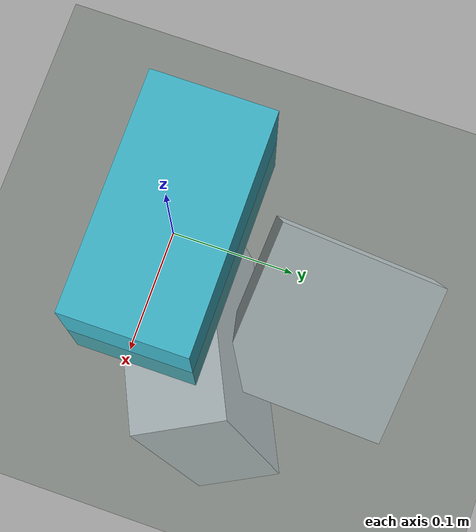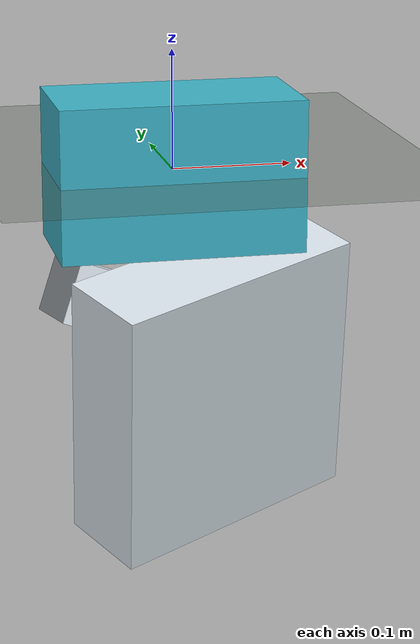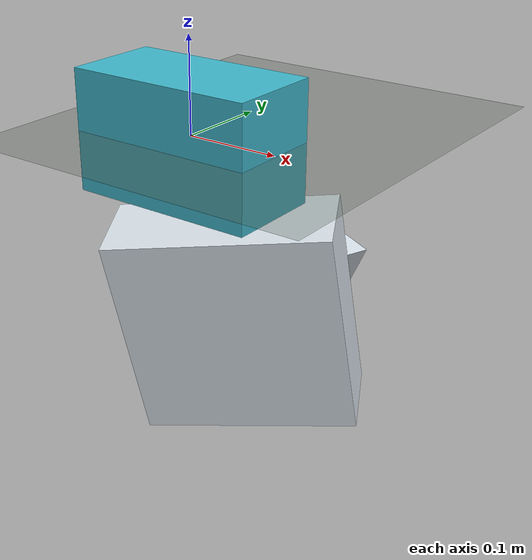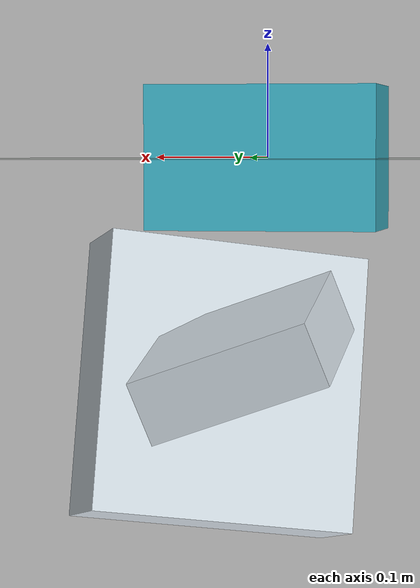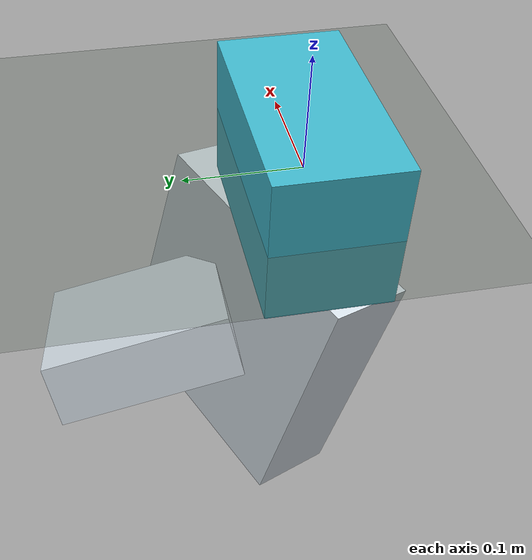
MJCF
<mujoco model="criatura">
  <compiler angle="degree" autolimits="true"/>
  <option timestep="0.002083" gravity="0 0 -9.81" integrator="implicitfast"/>
  <default>
    <geom type="box" density="300.0" rgba="0.85 0.89 0.92 1"/>
    <joint type="hinge"/>
    <motor ctrlrange="-1 1"/>
  </default>
  <worldbody>
    <geom name="suelo" type="plane" size="0 0 1" friction="1 0.005 0.0001" rgba="0.3 0.35 0.3 1"/>
    <body name="p0_n0" pos="0.00000 0.00000 0.00000" quat="1.000000 0.000000 0.000000 0.000000">
      <freejoint name="raiz"/>
      <geom name="g_p0_n0" size="0.10148 0.05261 0.06356" rgba="0.25 0.72 0.8 1"/>
      <body name="p1_n1" pos="0.03856 0.02801 -0.20128" quat="0.712301 -0.082962 0.655725 0.236155">
        <joint name="p1_n1_j0" axis="0.0000 -1.0000 0.0000" pos="-0.14150 0 0" range="-44.87 44.87" damping="0.2006"/>
        <joint name="p1_n1_j1" axis="0.0000 0.0000 1.0000" pos="-0.14150 0 0" range="-44.87 44.87" damping="0.2006"/>
        <geom name="g_p1_n1" size="0.12150 0.04179 0.11683"/>
        <body name="p2_n1" pos="-0.01109 0.12392 0.01734" quat="0.773014 0.340796 -0.020845 0.534671">
          <joint name="p2_n1_j0" axis="0.0000 1.0000 0.0000" pos="-0.10109 0 0" range="-44.87 44.87" damping="0.1305"/>
          <joint name="p2_n1_j1" axis="0.0000 0.0000 1.0000" pos="-0.10109 0 0" range="-44.87 44.87" damping="0.1305"/>
          <geom name="g_p2_n1" size="0.08109 0.02789 0.07798"/>
        </body>
      </body>
    </body>
  </worldbody>
  <actuator>
    <motor name="m_p1_n1_j0" joint="p1_n1_j0" gear="-4.0125"/>
    <motor name="m_p1_n1_j1" joint="p1_n1_j1" gear="-4.0125"/>
    <motor name="m_p2_n1_j0" joint="p2_n1_j0" gear="2.6100"/>
    <motor name="m_p2_n1_j1" joint="p2_n1_j1" gear="2.6100"/>
  </actuator>
</mujoco>
